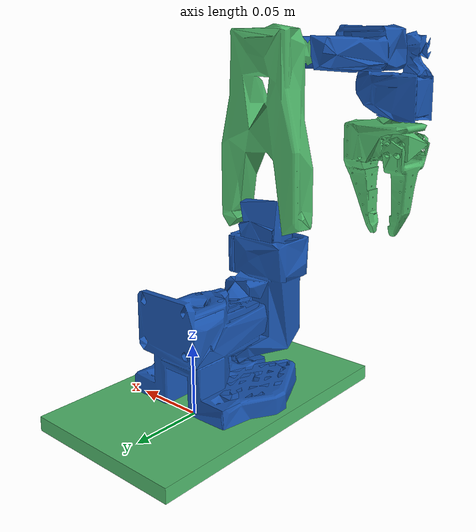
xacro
<?xml version="1.0" encoding="utf-8"?>
<robot
  xmlns:xacro="http://www.ros.org/wiki/xacro"
  name="liquid_galaxy_arm">

  <xacro:include filename="ros2_control_plugins.xacro"/>

  <xacro:property name="m" value="30.0"/>
  <xacro:property name="x" value="0.12"/>
  <xacro:property name="y" value="0.2"/>
  <xacro:property name="z" value="0.01"/>

  <material name="green">
    <color rgba="0.313 0.729 0.423 1.0"/>
  </material>

  <material name="blue">
    <color rgba="0.101 0.337 0.698 1.0"/>
  </material>

  <link
    name="base_link">
    <visual>
      <origin xyz="0.0 -0.02 ${z/2}" rpy="0.0 0.0 0.0"/>
      <geometry>
        <box size="${x} ${y} ${z}"/>
      </geometry>
      <material name="green"/>
    </visual>
    <collision>
      <origin xyz="0.0 0.0 ${z/2}" rpy="0.0 0.0 0.0"/>
      <geometry>
        <box size="${x} ${y} ${z}"/>
      </geometry>
    </collision>
    <inertial>
      <mass value="${m}"/>
      <origin xyz="0.0 0.0 ${z/2}" rpy="0.0 0.0 0.0"/>
      <inertia ixx="${(m/12)*(y*y + z*z)}" ixy="0.0" ixz="0.0"
                     iyy="${(m/12)*(x*x + z*z)}" iyz="0.0"
                     izz="${(m/12)*(x*x + y*y)}"/>
    </inertial>
  </link>

  <joint name="base_link_joint" type="fixed">
    <parent link="base_link"/>
    <child link="Base"/>
    <origin xyz="0 0 0.007" rpy="0 0 0"/>
  </joint>
  <link
    name="Base">
    <inertial>
      <origin
        xyz="-2.4596E-07 0.0311 0.01757"
        rpy="0 0 0" />
      <mass
        value="0.1931" />
      <inertia
        ixx="0.00013"
        ixy="2.1013E-08"
        ixz="4.2408E-09"
        iyy="0.00016"
        iyz="2.2651E-05"
        izz="0.00014" />
    </inertial>
    <visual>
      <origin
        xyz="0 0 0"
        rpy="0 0 0" />
      <geometry>
        <mesh
          filename="package://lg_arm/assets/models/Base.stl" />
      </geometry>
      <material name="blue"/>
    </visual>
    <collision>
      <origin
        xyz="0 0 0"
        rpy="0 0 0" />
      <geometry>
        <mesh
          filename="package://lg_arm/assets/decimated/simplify_Base.stl" />
      </geometry>
    </collision>
  </link>

  <link
    name="Shoulder_Rotation_Pitch">
    <inertial>
      <origin
        xyz="-9.0788E-05 0.059 0.031"
        rpy="0 0 0" />
      <mass
        value="0.1192" />
      <inertia
        ixx="5.904E-05"
        ixy="4.908E-07"
        ixz="-5.9045E-08"
        iyy="3.214986E-05"
        iyz="-4.5803E-06"
        izz="5.8606E-05" />
    </inertial>
    <visual>
      <origin
        xyz="0 0 0"
        rpy="0 0 0" />
      <geometry>
        <mesh
          filename="package://lg_arm/assets/models/Shoulder_Rotation_Pitch.stl" />
      </geometry>
      <material
        name="blue"/>
    </visual>
    <collision>
      <origin
        xyz="0 0 0"
        rpy="0 0 0" />
      <geometry>
        <mesh
          filename="package://lg_arm/assets/decimated/simplify_Shoulder_Rotation_Pitch.stl" />
      </geometry>
    </collision>
  </link>
  <joint
    name="Shoulder_Rotation"
    type="revolute">
    <dynamics damping="0.3" friction="0.3"/>
    <limit lower="-3.14" upper="3.14" effort="100.0" velocity="100.0"/>
    <origin
      xyz="0 -0.0452 0.0165"
      rpy="1.5708 0 0" />
    <parent
      link="Base" />
    <child
      link="Shoulder_Rotation_Pitch" />
    <axis
      xyz="0 1 0" />
  </joint>
  <link
    name="Upper_Arm">
    <inertial>
      <origin
        xyz="-1.7205E-05 0.0701 0.0031"
        rpy="0 0 0" />
      <mass
        value="0.1624" />
      <inertia
        ixx="0.0002"
        ixy="1.039E-06"
        ixz="-1.2016E-08"
        iyy="7.0194E-05"
        iyz="2.1188E-06"
        izz="0.0002" />
    </inertial>
    <visual>
      <origin
        xyz="0 0 0"
        rpy="0 0 0" />
      <geometry>
        <mesh
          filename="package://lg_arm/assets/models/Upper_Arm.stl" />
      </geometry>
      <material
        name="green"/>
    </visual>
    <collision>
      <origin
        xyz="0 0 0"
        rpy="0 0 0" />
      <geometry>
        <mesh
          filename="package://lg_arm/assets/decimated/simplify_Upper_Arm.stl" />
      </geometry>
    </collision>
  </link>
  <joint
    name="Shoulder_Pitch"
    type="revolute">
    <dynamics damping="0.3" friction="0.3"/>
    <limit lower="-1.57" upper="1.57" effort="100.0" velocity="100.0"/>
    <origin
      xyz="0 0.1025 0.0306"
      rpy="0 0 0" />
    <parent
      link="Shoulder_Rotation_Pitch" />
    <child
      link="Upper_Arm" />
    <axis
      xyz="1 0 0" />
  </joint>
  <link
    name="Lower_Arm">
    <inertial>
      <origin
        xyz="-0.0034 0.0013 0.0768"
        rpy="0 0 0" />
      <mass
        value="0.1479" />
      <inertia
        ixx="0.0001"
        ixy="1.7306E-07"
        ixz="-1.172E-05"
        iyy="0.00014"
        iyz="1.7743E-06"
        izz="5.0874E-05" />
    </inertial>
    <visual>
      <origin
        xyz="0 0 0"
        rpy="0 0 0" />
      <geometry>
        <mesh
          filename="package://lg_arm/assets/models/Lower_Arm.stl" />
      </geometry>
      <material
        name="blue"/>
    </visual>
    <collision>
      <origin
        xyz="0 0 0"
        rpy="0 0 0" />
      <geometry>
        <mesh
          filename="package://lg_arm/assets/decimated/simplify_Lower_Arm.stl" />
      </geometry>
    </collision>
  </link>
  <joint
    name="Elbow"
    type="revolute">
    <dynamics damping="0.3" friction="0.3"/>
    <limit lower="-1.57" upper="1.57" effort="100.0" velocity="100.0"/>
    <origin
      xyz="0 0.11257 0.028"
      rpy="0 0 0" />
    <parent
      link="Upper_Arm" />
    <child
      link="Lower_Arm" />
    <axis
      xyz="1 0 0" />
  </joint>
  <link
    name="Wrist_Pitch_Roll">
    <inertial>
      <origin
        xyz="-0.0085 -0.0352 -2.3462E-05"
        rpy="0 0 0" />
      <mass
        value="0.0661" />
      <inertia
        ixx="1.9572E-05"
        ixy="-6.6271E-07"
        ixz="5.20089E-09"
        iyy="2.3803E-05"
        iyz="4.0955E-08"
        izz="3.454E-05" />
    </inertial>
    <visual>
      <origin
        xyz="0 0 0"
        rpy="0 0 0" />
      <geometry>
        <mesh
          filename="package://lg_arm/assets/models/Wrist_Pitch_Roll.stl" />
      </geometry>
      <material
        name="blue"/>
    </visual>
    <collision>
      <origin
        xyz="0 0 0"
        rpy="0 0 0" />
      <geometry>
        <mesh
          filename="package://lg_arm/assets/decimated/simplify_Wrist_Pitch_Roll.stl" />
      </geometry>
    </collision>
  </link>
  <joint
    name="Wrist_Pitch"
    type="revolute">
    <dynamics damping="0.3" friction="0.3"/>
    <limit lower="-1.57" upper="1.57" effort="100.0" velocity="100.0"/>
    <origin
      xyz="0 0.0052 0.1349"
      rpy="0 0 0" />
    <parent
      link="Lower_Arm" />
    <child
      link="Wrist_Pitch_Roll" />
    <axis
      xyz="1 0 0" />
  </joint>
  <link
    name="Fixed_Gripper">
    <inertial>
      <origin
        xyz="0.0055 -0.02801 0.0004"
        rpy="0 0 0" />
      <mass
        value="0.093" />
      <inertia
        ixx="4.333E-05"
        ixy="7.0965E-06"
        ixz="5.998E-07"
        iyy="3.044E-05"
        iyz="-1.5874E-07"
        izz="5.0246E-05" />
    </inertial>
    <visual>
      <origin
        xyz="0 0 0"
        rpy="0 0 0" />
      <geometry>
        <mesh
          filename="package://lg_arm/assets/models/Fixed_Gripper.stl" />
      </geometry>
      <material
        name="green"/>
    </visual>
    <collision>
      <origin
        xyz="0 0 0"
        rpy="0 0 0" />
      <geometry>
        <mesh
          filename="package://lg_arm/assets/decimated/simplify_Fixed_Gripper.stl" />
      </geometry>
    </collision>
  </link>
  <joint
    name="Wrist_Roll"
    type="revolute">
    <dynamics damping="0.3" friction="0.3"/>
    <limit lower="-3.14" upper="3.14" effort="100.0" velocity="100.0"/>
    <origin
      xyz="0 -0.0601 0"
      rpy="0 0 0" />
    <parent
      link="Wrist_Pitch_Roll" />
    <child
      link="Fixed_Gripper" />
    <axis
      xyz="0 1 0" />
  </joint>
  <link
    name="Moving_Jaw">
    <inertial>
      <origin
        xyz="-0.0016 -0.030 0.0004"
        rpy="0 0 0" />
      <mass
        value="0.0202" />
      <inertia
        ixx="1.1091E-05"
        ixy="-5.35E-07"
        ixz="-9.4613E-09"
        iyy="3.0357E-06"
        iyz="-1.711E-07"
        izz="8.991E-06" />
    </inertial>
    <visual>
      <origin
        xyz="0 0 0"
        rpy="0 0 0" />
      <geometry>
        <mesh
          filename="package://lg_arm/assets/models/Moving_Jaw.stl" />
      </geometry>
      <material
        name="green"/>
    </visual>
    <collision>
      <origin
        xyz="0 0 0"
        rpy="0 0 0" />
      <geometry>
        <mesh
          filename="package://lg_arm/assets/decimated/simplify_Moving_Jaw.stl" />
      </geometry>
    </collision>
  </link>
  <joint
    name="Gripper"
    type="revolute">
    <dynamics damping="0.3" friction="0.3"/>
    <limit lower="-0.2" upper="1.37" effort="100.0" velocity="100.0"/>
    <origin
      xyz="-0.0202 -0.0244 0"
      rpy="3.1416 0 3.1416" />
    <parent
      link="Fixed_Gripper" />
    <child
      link="Moving_Jaw" />
    <axis
      xyz="0 0 1" />
  </joint>
</robot>
